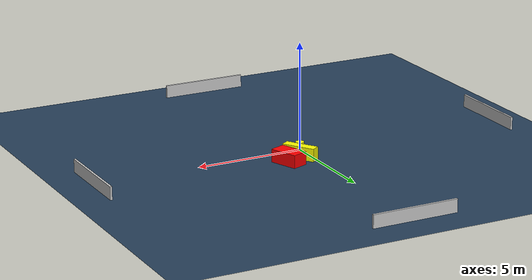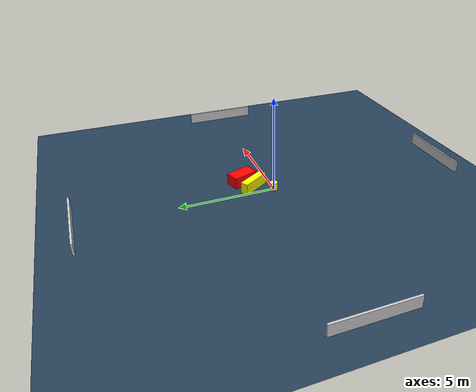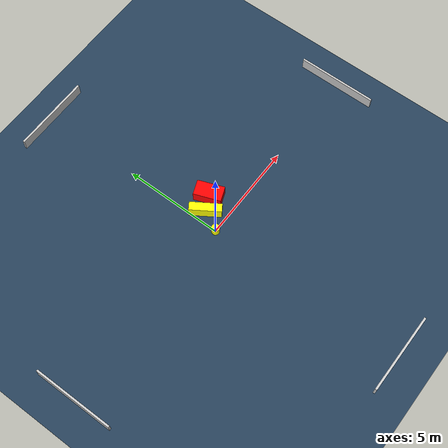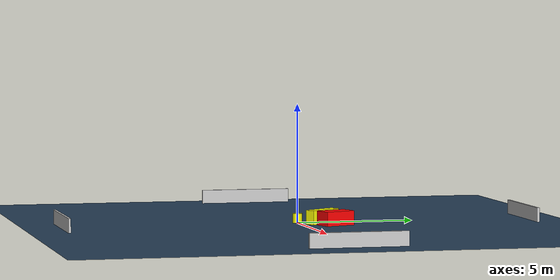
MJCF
<?xml version="1.0" ?>
<mujoco model="generated_environment">
  <option timestep="0.01" integrator="RK4" cone="elliptic"/>
  <default>
    <geom density="1"/>
  </default>
  <asset>
    <texture builtin="gradient" height="3072" name="skybox" rgb1="0.3 0.5 0.7" rgb2="0 0 0" type="skybox" width="512"/>
    <texture builtin="checker" height="300" name="groundplane" rgb1="0.2 0.3 0.4" rgb2="0.1 0.2 0.3" type="2d" width="300"/>
    <material name="groundplane" reflectance="0.2" texrepeat="5 5" texture="groundplane"/>
  </asset>
  <worldbody>
    <light dir="0 0 -1" directional="true" pos="0 0 1.5"/>
    <geom condim="3" friction="0.5 0.005 0.001" material="groundplane" name="floor" pos="0 0 0" size="0 0 0.05" type="plane"/>
    <body name="walls">
      <geom name="wall_1" condim="4" pos="-10.0 0.0 0.3" rgba="0.800000011920929 0.800000011920929 0.800000011920929 1.0" size="0.05 2.0 0.3" type="box"/>
      <geom name="wall_2" condim="4" pos="10.0 0.0 0.3" rgba="0.800000011920929 0.800000011920929 0.800000011920929 1.0" size="0.05 2.0 0.3" type="box"/>
      <geom name="wall_3" condim="4" pos="0.0 -10.0 0.3" rgba="0.800000011920929 0.800000011920929 0.800000011920929 1.0" size="2.0 0.05 0.3" type="box"/>
      <geom name="wall_4" condim="4" pos="0.0 10.0 0.3" rgba="0.800000011920929 0.800000011920929 0.800000011920929 1.0" size="2.0 0.05 0.3" type="box"/>
    </body>
    <body name="robot">
      <joint name="joint_x" type="slide" pos="0 0 0" axis="1 0 0"/>
      <joint name="joint_y" type="slide" pos="0 0 0" axis="0 1 0"/>
      <geom name="robot" type="cylinder" pos="0.0 0.0 0.2" size="0.2 0.2 0.0" mass="5.0" friction="1.0 0.005 0.0001" condim="4" rgba="1.0 1.0 0.0 1.0"/>
    </body>
    <body name="obstacle_1_movable">
      <geom name="obstacle_1_movable" condim="4" pos="0.4931020077869672 0.9606334942879475 0.3" euler="0 0 302.9215226291557" friction="0.0 0.005 0.001" rgba="1.0 1.0 0.0 1.0" size="0.7780422181529438 0.20959218239425792 0.3" type="box" mass="0.1"/>
      <joint type="free"/>
    </body>
    <body name="obstacle_2_static">
      <geom name="obstacle_2_static" condim="4" pos="1.2639888069322887 1.3358052717288436 0.3" euler="0 0 110.55704151739674" friction="0.0 0.005 0.001" rgba="1.0 0.0 0.0 1.0" size="0.6773953438450959 0.38200305301014303 0.3" type="box"/>
    </body>
  </worldbody>
  <actuator>
    <motor name="actuator_x" joint="joint_x" gear="1" ctrlrange="-1 1"/>
    <motor name="actuator_y" joint="joint_y" gear="1" ctrlrange="-1 1"/>
  </actuator>
</mujoco>
